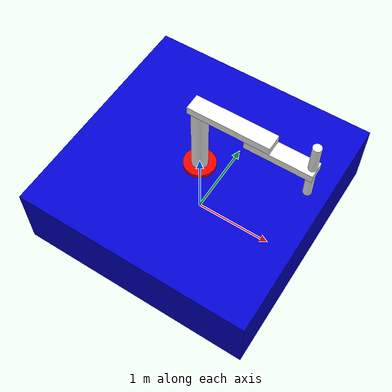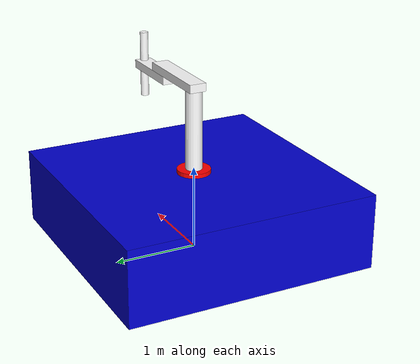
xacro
<?xml version="1.0"?>
<robot name ="scara1">

    <material name="white">
        <color rgba="1 1 1 1"/>
    </material>
    <material name="blue">
        <color rgba="0 0 .8 1"/>
    </material>
    <material name="red">
        <color rgba="1 0 0 1"/>
    </material>

    <link name = "world"></link>

    <link name="base_link">
        <visual>
           <geometry>
                <box size = " 3 3 0.9"/>
            </geometry>
            <origin xyz="0 0 0"/>
            <material name="blue"/>
        </visual>
    </link>

    <joint name="baseLink_to_world" type="fixed">
        <parent link="world"/>
        <child link="base_link"/>
        <origin xyz="0 0 0.5"/>
        <axis xyz = "1 0 0"></axis>
    </joint>

    <link name="robot_base">
        <visual>
            <geometry>
                <cylinder length="0.1" radius="0.2"/>
            </geometry>
            <origin xyz="0 0 0"/>
            <material name="red"/>
        </visual>
    </link>

    <joint name="base_to_world" type="fixed">
        <parent link="world"/>
        <child link="robot_base"/>
        <origin xyz="0 0 0.95"/>
        <axis xyz = "1 0 0"></axis>
    </joint>

    <link name = "robot_baseLink">
        <visual>
            <geometry>
                <cylinder length="1" radius="0.1"/>
            </geometry>
            <origin xyz ="0 0 0.5"></origin>
            <material name="white"/>
        </visual>
        <collision>
            <geometry>
                <cylinder length="1" radius="0.1"/>
            </geometry>
        </collision>
        <inertial>
            <mass value="10"/>
            <inertia ixx="0.4" ixy="0.0" ixz="0.0" iyy="0.4" iyz="0.0" izz="0.2"/>
        </inertial>
    </link>

    <joint name="robotBaseLink_to_base" type="fixed">
        <parent link="base_link"/>
        <child link="robot_baseLink"/>
        <origin xyz="0 0 0.5"/>
        <axis xyz = "1 0 0"></axis>
    </joint>

    <link name ="robot_link1">
        <visual>
            <geometry>
                <box size = "1 0.2 0.1"></box>
            </geometry>
            <origin rpy="0 0 0" xyz="0.4 0 0"/>
            <material name="white"/>
        </visual>
        <collision>
            <geometry>
                <box size = "1 0.2 0.1"></box>
            </geometry>
        </collision>
        <inertial>
            <mass value="10"/>
            <inertia ixx="0.4" ixy="0.0" ixz="0.0" iyy="0.4" iyz="0.0" izz="0.2"/>
        </inertial>
    </link>

    <joint name="robotLink1_to_robotBaseLink" type="continuous">
        <parent link="robot_baseLink"/>
        <child link="robot_link1"/>
        <origin xyz="0 0 1"/>
        <axis xyz = "0 0 1"></axis>
    </joint>

    <link name ="robot_link2">
        <visual>
            <geometry>
                <box size = "0.8 0.2 0.1"></box>
            </geometry>
            <origin rpy="0 0 0" xyz="0.3 0 0"/>
            <material name="white"/>
        </visual>
        <collision>
            <geometry>
                <box size = "0.8 0.2 0.1"></box>
            </geometry>
        </collision>
        <inertial>
            <mass value="10"/>
            <inertia ixx="0.4" ixy="0.0" ixz="0.0" iyy="0.4" iyz="0.0" izz="0.2"/>
        </inertial>
    </link>

    <joint name="robotLink2_to_robotLink1" type="continuous">
        <parent link="robot_link1"/>
        <child link="robot_link2"/>
        <origin xyz="0.7 0 -0.1"/>
        <axis xyz = "0 0 1"></axis>
    </joint>

    <link name ="robot_link3">
        <visual>
            <geometry>
                <cylinder length="0.8" radius="0.05"/>
            </geometry>
            <origin rpy="0 0 0" xyz="0 0 0"/>
            <material name="white"/>
        </visual>
        <collision>
            <geometry>
                <cylinder length="0.8" radius="0.05"/>
            </geometry>
        </collision>
        <inertial>
            <mass value="5"/>
            <inertia ixx="0.4" ixy="0.0" ixz="0.0" iyy="0.4" iyz="0.0" izz="0.2"/>
        </inertial>
    </link>

    <joint name="robotLink3_to_robotLink2" type="prismatic">
        <parent link="robot_link2"/>
        <child link="robot_link3"/>
        <limit  lower="-0.35" upper="0.35"  effort="1000.0" velocity="0.05"/>
        <origin xyz="0.65 0 0"/>
        <axis xyz = "0 0 1"></axis>
    </joint>

</robot>
